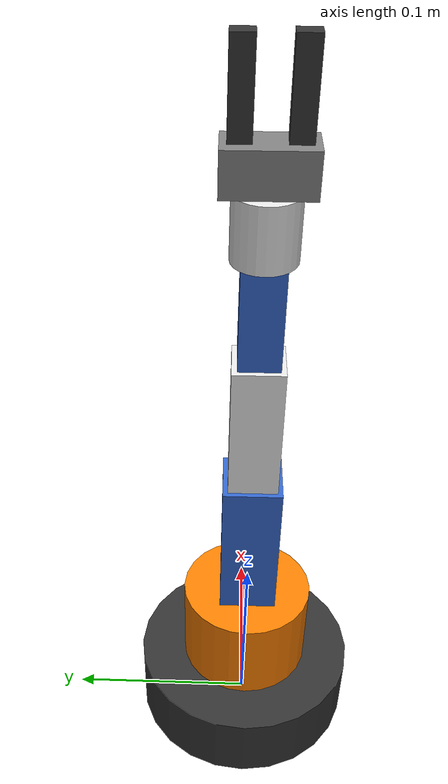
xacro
<?xml version="1.0"?>
<robot xmlns:xacro="http://www.ros.org/wiki/xacro" name="sorting_arm">

  <!-- ===================== CONSTANTS ===================== -->
  <xacro:property name="PI" value="3.1415926535897931"/>

  <!-- ===================== MATERIALS ===================== -->
  <material name="blue">
    <color rgba="0.2 0.4 0.8 1"/>
  </material>

  <material name="white">
    <color rgba="0.9 0.9 0.9 1"/>
  </material>

  <material name="grey">
    <color rgba="0.5 0.5 0.5 1"/>
  </material>

  <material name="dark_grey">
    <color rgba="0.2 0.2 0.2 1"/>
  </material>

  <material name="orange">
    <color rgba="1.0 0.5 0.0 1"/>
  </material>

  <!-- ===================== BASE LINK ===================== -->
  <link name="base_link">
    <visual>
      <origin xyz="0 0 0.02" rpy="0 0 0"/>
      <geometry>
        <cylinder radius="0.06" length="0.04"/>
      </geometry>
      <material name="dark_grey"/>
    </visual>
    <collision>
      <origin xyz="0 0 0.02" rpy="0 0 0"/>
      <geometry>
        <cylinder radius="0.06" length="0.04"/>
      </geometry>
    </collision>
    <inertial>
      <origin xyz="0 0 0.02" rpy="0 0 0"/>
      <mass value="1.0"/>
      <inertia ixx="0.002" ixy="0" ixz="0" iyy="0.002" iyz="0" izz="0.002"/>
    </inertial>
  </link>

  <!-- ===================== LINK 1 - ROTATING BASE ===================== -->
  <link name="link1">
    <visual>
      <origin xyz="0 0 0.025" rpy="0 0 0"/>
      <geometry>
        <cylinder radius="0.035" length="0.05"/>
      </geometry>
      <material name="orange"/>
    </visual>
    <collision>
      <origin xyz="0 0 0.025" rpy="0 0 0"/>
      <geometry>
        <cylinder radius="0.035" length="0.05"/>
      </geometry>
    </collision>
    <inertial>
      <origin xyz="0 0 0.025" rpy="0 0 0"/>
      <mass value="0.3"/>
      <inertia ixx="0.0005" ixy="0" ixz="0" iyy="0.0005" iyz="0" izz="0.0003"/>
    </inertial>
  </link>

  <joint name="joint1" type="revolute">
    <parent link="base_link"/>
    <child link="link1"/>
    <origin xyz="0 0 0.04" rpy="0 0 0"/>
    <axis xyz="0 0 1"/>
    <limit lower="${-PI}" upper="${PI}" effort="30" velocity="1.5"/>
    <dynamics damping="0.5" friction="0.1"/>
  </joint>

  <!-- ===================== LINK 2 - SHOULDER ===================== -->
  <link name="link2">
    <visual>
      <origin xyz="0 0 0.04" rpy="0 0 0"/>
      <geometry>
        <box size="0.03 0.03 0.08"/>
      </geometry>
      <material name="blue"/>
    </visual>
    <collision>
      <origin xyz="0 0 0.04" rpy="0 0 0"/>
      <geometry>
        <box size="0.03 0.03 0.08"/>
      </geometry>
    </collision>
    <inertial>
      <origin xyz="0 0 0.04" rpy="0 0 0"/>
      <mass value="0.2"/>
      <inertia ixx="0.0003" ixy="0" ixz="0" iyy="0.0003" iyz="0" izz="0.0001"/>
    </inertial>
  </link>

  <joint name="joint2" type="revolute">
    <parent link="link1"/>
    <child link="link2"/>
    <origin xyz="0 0 0.05" rpy="0 0 0"/>
    <axis xyz="0 1 0"/>
    <limit lower="${-PI/2}" upper="${PI/2}" effort="30" velocity="1.5"/>
    <dynamics damping="0.5" friction="0.1"/>
  </joint>

  <!-- ===================== LINK 3 - ELBOW ===================== -->
  <link name="link3">
    <visual>
      <origin xyz="0 0 0.035" rpy="0 0 0"/>
      <geometry>
        <box size="0.025 0.025 0.07"/>
      </geometry>
      <material name="white"/>
    </visual>
    <collision>
      <origin xyz="0 0 0.035" rpy="0 0 0"/>
      <geometry>
        <box size="0.025 0.025 0.07"/>
      </geometry>
    </collision>
    <inertial>
      <origin xyz="0 0 0.035" rpy="0 0 0"/>
      <mass value="0.15"/>
      <inertia ixx="0.0002" ixy="0" ixz="0" iyy="0.0002" iyz="0" izz="0.00005"/>
    </inertial>
  </link>

  <joint name="joint3" type="revolute">
    <parent link="link2"/>
    <child link="link3"/>
    <origin xyz="0 0 0.08" rpy="0 0 0"/>
    <axis xyz="0 1 0"/>
    <limit lower="${-2.5}" upper="${2.5}" effort="20" velocity="1.5"/>
    <dynamics damping="0.3" friction="0.1"/>
  </joint>

  <!-- ===================== LINK 4 - WRIST ===================== -->
  <link name="link4">
    <visual>
      <origin xyz="0 0 0.025" rpy="0 0 0"/>
      <geometry>
        <box size="0.02 0.02 0.05"/>
      </geometry>
      <material name="blue"/>
    </visual>
    <collision>
      <origin xyz="0 0 0.025" rpy="0 0 0"/>
      <geometry>
        <box size="0.02 0.02 0.05"/>
      </geometry>
    </collision>
    <inertial>
      <origin xyz="0 0 0.025" rpy="0 0 0"/>
      <mass value="0.1"/>
      <inertia ixx="0.0001" ixy="0" ixz="0" iyy="0.0001" iyz="0" izz="0.00005"/>
    </inertial>
  </link>

  <joint name="joint4" type="revolute">
    <parent link="link3"/>
    <child link="link4"/>
    <origin xyz="0 0 0.07" rpy="0 0 0"/>
    <axis xyz="0 1 0"/>
    <limit lower="${-PI/2}" upper="${PI/2}" effort="10" velocity="2.0"/>
    <dynamics damping="0.2" friction="0.05"/>
  </joint>

  <!-- ===================== LINK 5 - WRIST ROLL ===================== -->
  <link name="link5">
    <visual>
      <origin xyz="0 0 0.015" rpy="0 0 0"/>
      <geometry>
        <cylinder radius="0.015" length="0.03"/>
      </geometry>
      <material name="white"/>
    </visual>
    <collision>
      <origin xyz="0 0 0.015" rpy="0 0 0"/>
      <geometry>
        <cylinder radius="0.015" length="0.03"/>
      </geometry>
    </collision>
    <inertial>
      <origin xyz="0 0 0.015" rpy="0 0 0"/>
      <mass value="0.05"/>
      <inertia ixx="0.00002" ixy="0" ixz="0" iyy="0.00002" iyz="0" izz="0.00001"/>
    </inertial>
  </link>

  <joint name="joint5" type="revolute">
    <parent link="link4"/>
    <child link="link5"/>
    <origin xyz="0 0 0.05" rpy="0 0 0"/>
    <axis xyz="0 0 1"/>
    <limit lower="${-PI}" upper="${PI}" effort="5" velocity="2.0"/>
    <dynamics damping="0.1" friction="0.05"/>
  </joint>

  <!-- ===================== GRIPPER BASE ===================== -->
  <link name="gripper_base">
    <visual>
      <origin xyz="0 0 0.01" rpy="0 0 0"/>
      <geometry>
        <box size="0.02 0.04 0.02"/>
      </geometry>
      <material name="grey"/>
    </visual>
    <collision>
      <origin xyz="0 0 0.01" rpy="0 0 0"/>
      <geometry>
        <box size="0.02 0.04 0.02"/>
      </geometry>
    </collision>
    <inertial>
      <origin xyz="0 0 0.01" rpy="0 0 0"/>
      <mass value="0.03"/>
      <inertia ixx="0.00001" ixy="0" ixz="0" iyy="0.00001" iyz="0" izz="0.00001"/>
    </inertial>
  </link>

  <joint name="gripper_base_joint" type="fixed">
    <parent link="link5"/>
    <child link="gripper_base"/>
    <origin xyz="0 0 0.03" rpy="0 0 0"/>
  </joint>

  <!-- ===================== LEFT FINGER ===================== -->
  <link name="gripper_left">
    <visual>
      <origin xyz="0 0 0.02" rpy="0 0 0"/>
      <geometry>
        <box size="0.008 0.01 0.04"/>
      </geometry>
      <material name="dark_grey"/>
    </visual>
    <collision>
      <origin xyz="0 0 0.02" rpy="0 0 0"/>
      <geometry>
        <box size="0.008 0.01 0.04"/>
      </geometry>
    </collision>
    <inertial>
      <origin xyz="0 0 0.02" rpy="0 0 0"/>
      <mass value="0.01"/>
      <inertia ixx="0.000002" ixy="0" ixz="0" iyy="0.000002" iyz="0" izz="0.000001"/>
    </inertial>
  </link>

  <joint name="gripper_left_joint" type="prismatic">
    <parent link="gripper_base"/>
    <child link="gripper_left"/>
    <origin xyz="0 0.012 0.02" rpy="0 0 0"/>
    <axis xyz="0 1 0"/>
    <limit lower="0" upper="0.015" effort="5" velocity="0.1"/>
    <dynamics damping="0.5"/>
  </joint>

  <!-- ===================== RIGHT FINGER ===================== -->
  <link name="gripper_right">
    <visual>
      <origin xyz="0 0 0.02" rpy="0 0 0"/>
      <geometry>
        <box size="0.008 0.01 0.04"/>
      </geometry>
      <material name="dark_grey"/>
    </visual>
    <collision>
      <origin xyz="0 0 0.02" rpy="0 0 0"/>
      <geometry>
        <box size="0.008 0.01 0.04"/>
      </geometry>
    </collision>
    <inertial>
      <origin xyz="0 0 0.02" rpy="0 0 0"/>
      <mass value="0.01"/>
      <inertia ixx="0.000002" ixy="0" ixz="0" iyy="0.000002" iyz="0" izz="0.000001"/>
    </inertial>
  </link>

  <joint name="gripper_right_joint" type="prismatic">
    <parent link="gripper_base"/>
    <child link="gripper_right"/>
    <origin xyz="0 -0.012 0.02" rpy="0 0 0"/>
    <axis xyz="0 -1 0"/>
    <limit lower="0" upper="0.015" effort="5" velocity="0.1"/>
    <dynamics damping="0.5"/>
  </joint>

</robot>
